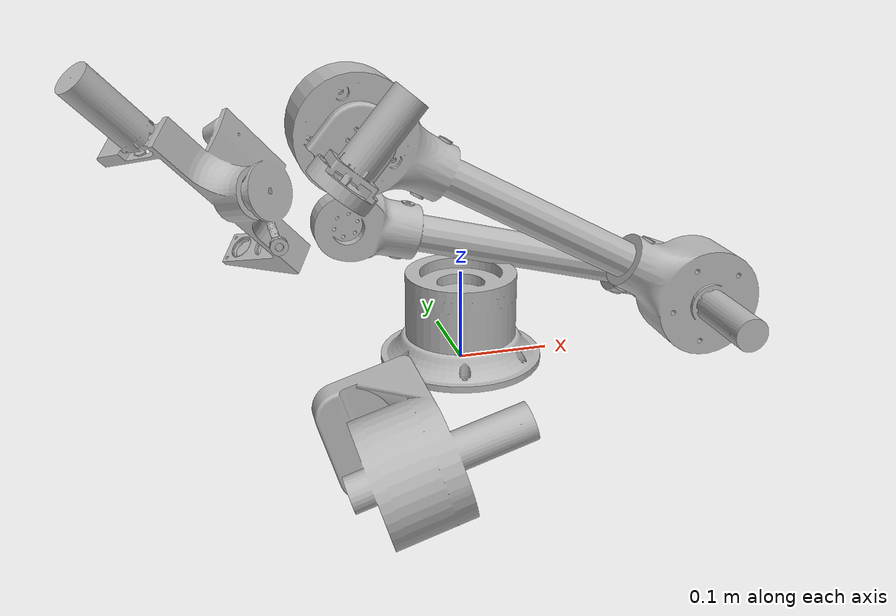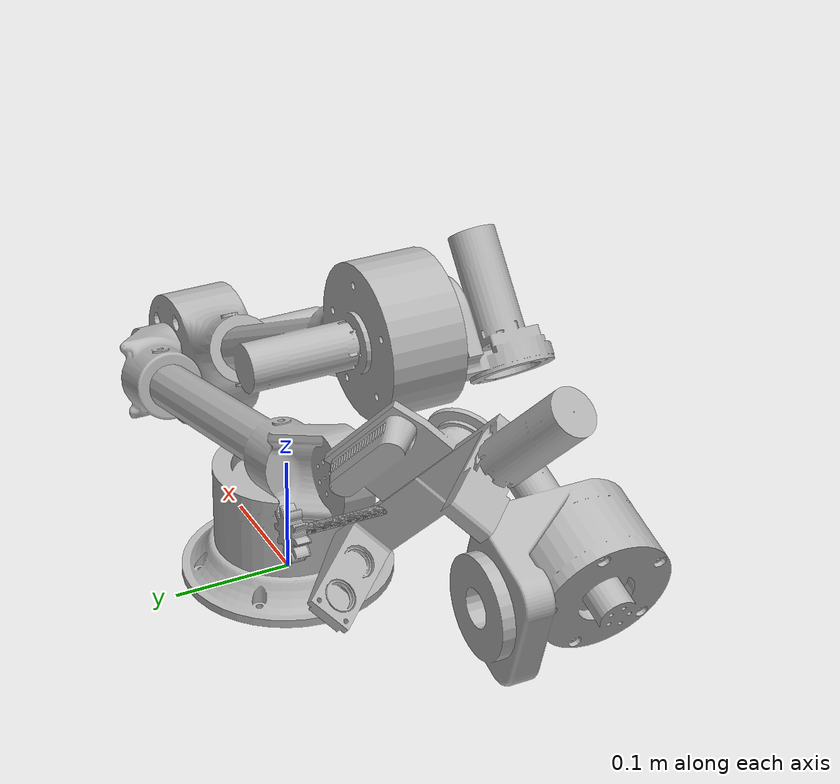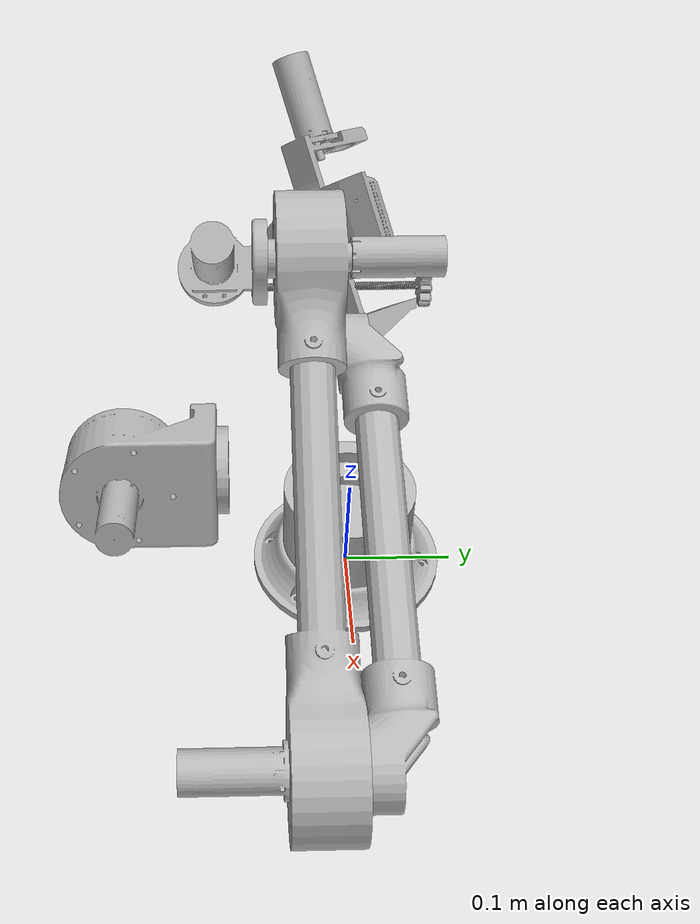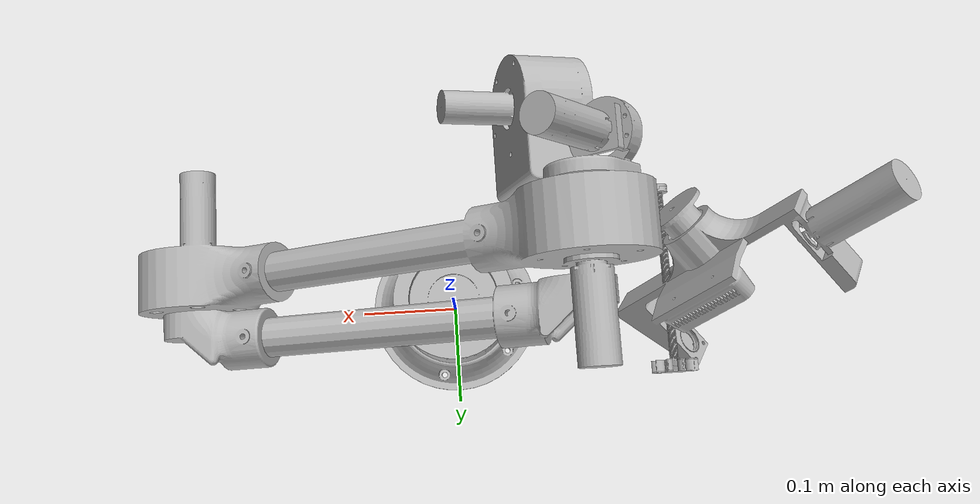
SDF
<?xml version="1.0" ?>
<sdf version="1.6">
  <world name="default">

    <!-- Add ground plane -->
<include>
  <uri>file:///usr/share/gazebo-11/models/ground_plane/model.sdf</uri>
        <pose>0 0 0 0 0 0</pose>
</include>

    <!-- Your plugin -->
    <plugin name="gazebo_link_attacher" filename="libgazebo_link_attacher.so"/>

  </world>
</sdf>

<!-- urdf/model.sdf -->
<sdf version='1.7'>
  <model name='urdf_humble_test'>
    <joint name='base_joint' type='fixed'>
      <pose relative_to='__model__'>0 0 0 0 -0 0</pose>
      <parent>world</parent>
      <child>base_link</child>
    </joint>
    <link name='base_link'>
      <pose relative_to='base_joint'>0 0 0 0 -0 0</pose>
      <inertial>
        <pose>-0.121699 -0.02362 0.037292 0 -0 0</pose>
        <mass>0.605407</mass>
        <inertia>
          <ixx>0.000512871</ixx>
          <ixy>-1.63573e-07</ixy>
          <ixz>6.72591e-09</ixz>
          <iyy>0.000512925</iyy>
          <iyz>-1.0381e-09</iyz>
          <izz>0.000944658</izz>
        </inertia>
      </inertial>
      <collision name='base_link_collision'>
        <pose>0 0 0 0 -0 0</pose>
        <geometry>
          <mesh>
            <scale>1 1 1</scale>
            <uri>model://urdf_humble_test/meshes/base_link.STL</uri>
          </mesh>
        </geometry>
      </collision>
      <visual name='base_link_visual'>
        <pose>0 0 0 0 -0 0</pose>
        <geometry>
          <mesh>
            <scale>1 1 1</scale>
            <uri>model://urdf_humble_test/meshes/base_link.STL</uri>
          </mesh>
        </geometry>
      </visual>
    </link>
    <joint name='joint_1' type='revolute'>
      <pose relative_to='base_link'>-0.12173 -0.02365 0 1.5708 -0 0</pose>
      <parent>base_link</parent>
      <child>link_1</child>
      <axis>
        <xyz>0 1 0</xyz>
        <limit>
          <lower>-3.1</lower>
          <upper>3.1</upper>
          <effort>0</effort>
          <velocity>0</velocity>
        </limit>
        <dynamics>
          <spring_reference>0</spring_reference>
          <spring_stiffness>0</spring_stiffness>
        </dynamics>
      </axis>
    </joint>
    <link name='link_1'>
      <pose relative_to='joint_1'>0 0 0 0 -0 0</pose>
      <inertial>
        <pose>1.3e-05 0.143555 0.024537 0 -0 0</pose>
        <mass>0.77988</mass>
        <inertia>
          <ixx>0.000946348</ixx>
          <ixy>-1.5616e-08</ixy>
          <ixz>6.24391e-08</ixz>
          <iyy>0.00079144</iyy>
          <iyz>-0.000180285</iyz>
          <izz>0.00115467</izz>
        </inertia>
      </inertial>
      <collision name='link_1_collision'>
        <pose>0 0 0 0 -0 0</pose>
        <geometry>
          <mesh>
            <scale>1 1 1</scale>
            <uri>model://urdf_humble_test/meshes/link_1.STL</uri>
          </mesh>
        </geometry>
      </collision>
      <visual name='link_1_visual'>
        <pose>0 0 0 0 -0 0</pose>
        <geometry>
          <mesh>
            <scale>1 1 1</scale>
            <uri>model://urdf_humble_test/meshes/link_1.STL</uri>
          </mesh>
        </geometry>
      </visual>
    </link>
    <joint name='joint_2' type='revolute'>
      <pose relative_to='link_1'>0 0.16104 -0.02365 0 -0 0</pose>
      <parent>link_1</parent>
      <child>link_2</child>
      <axis>
        <xyz>0 0 1</xyz>
        <limit>
          <lower>0</lower>
          <upper>3.14</upper>
          <effort>0</effort>
          <velocity>0</velocity>
        </limit>
        <dynamics>
          <spring_reference>0</spring_reference>
          <spring_stiffness>0</spring_stiffness>
        </dynamics>
      </axis>
    </joint>
    <link name='link_2'>
      <pose relative_to='joint_2'>0 0 0 0 -0 0</pose>
      <inertial>
        <pose>0.193508 -0.050519 -0.019214 0 -0 0</pose>
        <mass>0.443829</mass>
        <inertia>
          <ixx>0.000292002</ixx>
          <ixy>0.000113404</ixy>
          <ixz>4.71209e-10</ixz>
          <iyy>0.000696048</iyy>
          <iyz>-1.23664e-10</iyz>
          <izz>0.000788122</izz>
        </inertia>
      </inertial>
      <collision name='link_2_collision'>
        <pose>0 0 0 0 -0 0</pose>
        <geometry>
          <mesh>
            <scale>1 1 1</scale>
            <uri>model://urdf_humble_test/meshes/link_2.STL</uri>
          </mesh>
        </geometry>
      </collision>
      <visual name='link_2_visual'>
        <pose>0 0 0 0 -0 0</pose>
        <geometry>
          <mesh>
            <scale>1 1 1</scale>
            <uri>model://urdf_humble_test/meshes/link_2.STL</uri>
          </mesh>
        </geometry>
      </visual>
    </link>
    <joint name='joint_3' type='revolute'>
      <pose relative_to='link_2'>0.38703 -0.10104 0 0 -0 0</pose>
      <parent>link_2</parent>
      <child>link_3</child>
      <axis>
        <xyz>0 0 -1</xyz>
        <limit>
          <lower>0</lower>
          <upper>5.4</upper>
          <effort>0</effort>
          <velocity>0</velocity>
        </limit>
        <dynamics>
          <spring_reference>0</spring_reference>
          <spring_stiffness>0</spring_stiffness>
        </dynamics>
      </axis>
    </joint>
    <link name='link_3'>
      <pose relative_to='joint_3'>0 0 0 0 -0 0</pose>
      <inertial>
        <pose>-0.193037 0.105517 0.035926 0 -0 0</pose>
        <mass>1.67091</mass>
        <inertia>
          <ixx>0.00180935</ixx>
          <ixy>0.000466254</ixy>
          <ixz>-6.69329e-05</ixz>
          <iyy>0.00240701</iyy>
          <iyz>3.65788e-05</iyz>
          <izz>0.00354745</izz>
        </inertia>
      </inertial>
      <collision name='link_3_collision'>
        <pose>0 0 0 0 -0 0</pose>
        <geometry>
          <mesh>
            <scale>1 1 1</scale>
            <uri>model://urdf_humble_test/meshes/link_3.STL</uri>
          </mesh>
        </geometry>
      </collision>
      <visual name='link_3_visual'>
        <pose>0 0 0 0 -0 0</pose>
        <geometry>
          <mesh>
            <scale>1 1 1</scale>
            <uri>model://urdf_humble_test/meshes/link_3.STL</uri>
          </mesh>
        </geometry>
      </visual>
    </link>
    <joint name='joint_4' type='revolute'>
      <pose relative_to='link_3'>-0.38609 0.21104 0 0 -0 0</pose>
      <parent>link_3</parent>
      <child>link_4</child>
      <axis>
        <xyz>0 0 1</xyz>
        <limit>
          <lower>-3.14</lower>
          <upper>3.14</upper>
          <effort>0</effort>
          <velocity>0</velocity>
        </limit>
        <dynamics>
          <spring_reference>0</spring_reference>
          <spring_stiffness>0</spring_stiffness>
        </dynamics>
      </axis>
    </joint>
    <link name='link_4'>
      <pose relative_to='joint_4'>0 0 0 0 -0 0</pose>
      <inertial>
        <pose>-0.000188 -0.000228 0.1084 0 -0 0</pose>
        <mass>0.186465</mass>
        <inertia>
          <ixx>9.13012e-05</ixx>
          <ixy>-3.87294e-06</ixy>
          <ixz>1.12596e-05</ixz>
          <iyy>8.99373e-05</iyy>
          <iyz>1.34763e-05</iyz>
          <izz>9.52179e-05</izz>
        </inertia>
      </inertial>
      <collision name='link_4_collision'>
        <pose>0 0 0 0 -0 0</pose>
        <geometry>
          <mesh>
            <scale>1 1 1</scale>
            <uri>model://urdf_humble_test/meshes/link_4.STL</uri>
          </mesh>
        </geometry>
      </collision>
      <visual name='link_4_visual'>
        <pose>0 0 0 0 -0 0</pose>
        <geometry>
          <mesh>
            <scale>1 1 1</scale>
            <uri>model://urdf_humble_test/meshes/link_4.STL</uri>
          </mesh>
        </geometry>
      </visual>
    </link>
    <joint name='joint_5' type='revolute'>
      <pose relative_to='link_4'>-0.0225 -0.02681 0.12075 0 0 -0.87249</pose>
      <parent>link_4</parent>
      <child>link_5</child>
      <axis>
        <xyz>0.173286 -0.984872 0</xyz>
        <limit>
          <lower>-3.14</lower>
          <upper>3.14</upper>
          <effort>0</effort>
          <velocity>0</velocity>
        </limit>
        <dynamics>
          <spring_reference>0</spring_reference>
          <spring_stiffness>0</spring_stiffness>
        </dynamics>
      </axis>
    </joint>
    <link name='link_5'>
      <pose relative_to='joint_5'>0 0 0 0 -0 0</pose>
      <inertial>
        <pose>0.012002 -0.068225 0.019518 0 -0 0</pose>
        <mass>0.383986</mass>
        <inertia>
          <ixx>0.00119108</ixx>
          <ixy>3.05957e-05</ixy>
          <ixz>3.71467e-05</ixz>
          <iyy>0.00102257</iyy>
          <iyz>-0.000211154</iyz>
          <izz>0.000274967</izz>
        </inertia>
      </inertial>
      <collision name='link_5_collision'>
        <pose>0 0 0 0 -0 0</pose>
        <geometry>
          <mesh>
            <scale>1 1 1</scale>
            <uri>model://urdf_humble_test/meshes/link_5.STL</uri>
          </mesh>
        </geometry>
      </collision>
      <visual name='link_5_visual'>
        <pose>0 0 0 0 -0 0</pose>
        <geometry>
          <mesh>
            <scale>1 1 1</scale>
            <uri>model://urdf_humble_test/meshes/link_5.STL</uri>
          </mesh>
        </geometry>
      </visual>
    </link>
    <joint name='joint_6' type='revolute'>
      <pose relative_to='link_5'>0.015412 -0.087578 -0.12075 0 -0 1.74498</pose>
      <parent>link_5</parent>
      <child>link_6</child>
      <axis>
        <xyz>0 0 1</xyz>
        <limit>
          <lower>0</lower>
          <upper>20</upper>
          <effort>0</effort>
          <velocity>0</velocity>
        </limit>
        <dynamics>
          <spring_reference>0</spring_reference>
          <spring_stiffness>0</spring_stiffness>
        </dynamics>
      </axis>
    </joint>
    <link name='link_6'>
      <pose relative_to='joint_6'>0 0 0 0 -0 0</pose>
      <inertial>
        <pose>-5e-06 -3e-06 0.113953 0 -0 0</pose>
        <mass>0.0188998</mass>
        <inertia>
          <ixx>6.05113e-05</ixx>
          <ixy>1.17158e-12</ixy>
          <ixz>3.92243e-09</ixz>
          <iyy>6.05112e-05</iyy>
          <iyz>1.23181e-08</iyz>
          <izz>3.07816e-07</izz>
        </inertia>
      </inertial>
      <collision name='link_6_collision'>
        <pose>0 0 0 0 -0 0</pose>
        <geometry>
          <mesh>
            <scale>1 1 1</scale>
            <uri>model://urdf_humble_test/meshes/link_6.STL</uri>
          </mesh>
        </geometry>
      </collision>
      <visual name='link_6_visual'>
        <pose>0 0 0 0 -0 0</pose>
        <geometry>
          <mesh>
            <scale>1 1 1</scale>
            <uri>model://urdf_humble_test/meshes/link_6.STL</uri>
          </mesh>
        </geometry>
      </visual>
    </link>
    <joint name='joint_7' type='prismatic'>
      <pose relative_to='link_5'>0.015412 -0.087578 -0.12075 0 -0 1.74498</pose>
      <parent>link_5</parent>
      <child>link_7</child>
      <axis>
        <xyz>0 0 1</xyz>
        <limit>
          <lower>0</lower>
          <upper>0.11</upper>
          <effort>0</effort>
          <velocity>0</velocity>
        </limit>
        <dynamics>
          <spring_reference>0</spring_reference>
          <spring_stiffness>0</spring_stiffness>
        </dynamics>
      </axis>
    </joint>
    <link name='link_7'>
      <pose relative_to='joint_7'>0 0 0 0 -0 0</pose>
      <inertial>
        <pose>-0.010138 5e-06 0.075572 0 -0 0</pose>
        <mass>0.0711438</mass>
        <inertia>
          <ixx>1.02077e-05</ixx>
          <ixy>8.52994e-10</ixy>
          <ixz>-1.72824e-06</ixz>
          <iyy>6.09656e-05</iyy>
          <iyz>2.23588e-10</iyz>
          <izz>6.16572e-05</izz>
        </inertia>
      </inertial>
      <collision name='link_7_collision'>
        <pose>0 0 0 0 -0 0</pose>
        <geometry>
          <mesh>
            <scale>1 1 1</scale>
            <uri>model://urdf_humble_test/meshes/link_7.STL</uri>
          </mesh>
        </geometry>
      </collision>
      <visual name='link_7_visual'>
        <pose>0 0 0 0 -0 0</pose>
        <geometry>
          <mesh>
            <scale>1 1 1</scale>
            <uri>model://urdf_humble_test/meshes/link_7.STL</uri>
          </mesh>
        </geometry>
      </visual>
    </link>
    <static>0</static>
    <plugin name='gazebo_ros2_control' filename='libgazebo_ros2_control.so'>
      <parameters>$(find urdf_humble_test)/config/controller_manager.yaml</parameters>
    </plugin>
  </model>
</sdf>
